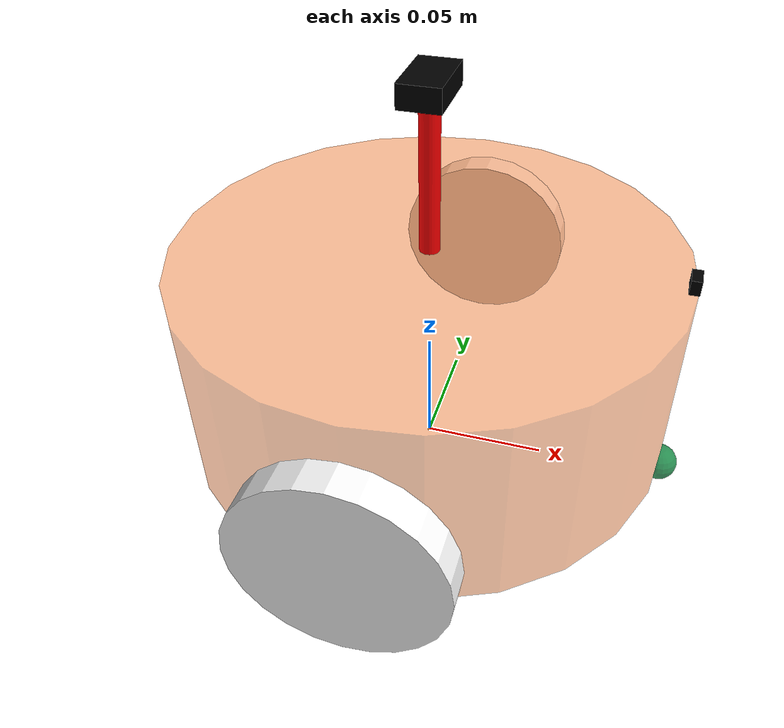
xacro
<robot name="mycar" xmlns:xacro="http://wiki.ros.org/xacro">
    <xacro:include filename="head.xacro" />
    <xacro:include filename="test2.xacro" />
    <xacro:include filename="camera.xacro" />
    <xacro:include filename="laser.xacro" />

    <xacro:include filename="gazebo/move.xacro" />
    <xacro:include filename="gazebo/lidar.xacro"/>
</robot>

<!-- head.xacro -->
<robot name="base" xmlns:xacro="http://wiki.ros.org/xacro">

    <xacro:macro name="sphere_inertial_matrix" params="m r">
        <inertial>
            <mass value="${m}" />
            <inertia ixx="${2*m*r*r/5}" ixy="0" ixz="0"
                iyy="${2*m*r*r/5}" iyz="0"
                izz="${2*m*r*r/5}" />
        </inertial>
    </xacro:macro>

    <xacro:macro name="cylinder_inertial_matrix" params="m r h">
        <inertial>
            <mass value="${m}" />
            <inertia ixx="${m*(3*r*r+h*h)/12}" ixy = "0" ixz = "0"
                iyy="${m*(3*r*r+h*h)/12}" iyz = "0"
                izz="${m*r*r/2}" />
        </inertial>
    </xacro:macro>

    <xacro:macro name="Box_inertial_matrix" params="m l w h">
       <inertial>
               <mass value="${m}" />
               <inertia ixx="${m*(h*h + l*l)/12}" ixy = "0" ixz = "0"
                   iyy="${m*(w*w + l*l)/12}" iyz= "0"
                   izz="${m*(w*w + h*h)/12}" />
       </inertial>
   </xacro:macro>
</robot>

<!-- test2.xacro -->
<robot name="mycar" xmlns:xacro="http://wiki.ros.org/xacro">
    <xacro:property name="PI" value="3.1415926"/>
    <xacro:property name="radius" value="0.1"/>
    <xacro:property name="footprint" value="0.001"/>
    <xacro:property name="wheel_radius" value="0.04"/>
    <xacro:property name="wheel_lenth" value="0.013"/>
    <xacro:property name="hight" value="0.015"/>
    <xacro:property name="base_lenth" value="0.08"/>

    <xacro:property name="wheel_joint_z" value="${-1*(base_lenth/2.0 -wheel_radius + hight)}"/>

    <link name = "base_footprint">
        <visual>
            <geometry>
                <sphere radius="${footprint}" />
            </geometry>
        </visual>
    </link>

    <link name="base_link">
        <visual>
            <geometry>
                <cylinder radius="${radius}" length="${base_lenth}" />
            </geometry>
            <origin xyz="0 0 0" rpy="0 0 0"/>
            <material name="BL_clolor">
                <color rgba="1.0 0.5 0.2 0.5" />
            </material>
        </visual>
        <collision>
         <geometry>
                <cylinder radius="${radius}" length="${base_lenth}" />
        </geometry>
        <origin xyz="0 0 0" rpy="0 0 0"/>
        </collision>
        <xacro:cylinder_inertial_matrix m="5" r="${radius}" h="${base_lenth}"/>
    </link>
    <gazebo reference="base_link">
        <material>Gazebo/Yellow</material>
    </gazebo>

    <joint name="L1" type="fixed">
        <parent link="base_footprint" />
        <child link="base_link" />
        <origin xyz="0 0 ${hight+base_lenth/2.0}" />
    </joint>

<xacro:macro name="mk_wheel" params="wheel_name flag1 flag2">
     <link name="${wheel_name}_wheel">
        <visual>
            <origin xyz="0 0 0" rpy="${PI*flag2*flag2/2.0} ${PI*flag1*flag1/2.0} 0" />
            <geometry>
                <cylinder radius="${wheel_radius}" length="${wheel_lenth}" />
            </geometry>
            <material name="wheel_color">
                <color rgba="1 1 1 1" />
            </material>
        </visual>
    <collision>
         <geometry>
                <cylinder radius="${wheel_radius}" length="${base_lenth}" />
        </geometry>
        <origin xyz="0 0 0" rpy="0 0 0"/>
    </collision>
        <xacro:cylinder_inertial_matrix m="0.6" r="${wheel_radius}" h="${wheel_lenth}"/>
    </link>
    <gazebo reference="${wheel_name}_wheel">
        <material>Gazebo/Red</material>
    </gazebo>

    <joint name="${wheel_name}2link" type="continuous">
        <parent link="base_link" />
        <child link="${wheel_name}_wheel" />
        <origin xyz="${(radius+wheel_lenth/2.0)*flag1} ${(radius+wheel_lenth/2.0)*flag2} ${wheel_joint_z}" rpy="0 0 0" />
        <axis xyz="${flag1} ${-flag2} 0" />
    </joint>
</xacro:macro>

    <xacro:mk_wheel wheel_name="l" flag1="0.0" flag2="1.0"/>
    <xacro:mk_wheel wheel_name="r" flag1="0.0" flag2="-1.0"/>

<link name="ball1">
        <visual>
            <geometry>
             <sphere radius="${hight/2}" />
            </geometry>
            <origin xyz="0 0 0" rpy="0 0 0"/>
            <material name="BL_clolor">
                <color rgba="0.0 0.5 0.2 0.8" />
            </material>
        </visual>
        <collision>
        <geometry>
             <sphere radius="${hight/2}" />
            </geometry>
        <origin xyz="0 0 0" rpy="0 0 0"/>
        </collision>
        <xacro:sphere_inertial_matrix m="1" r="${hight/2}" />
    </link>
    <gazebo reference="base_link">
        <material>Gazebo/Yellow</material>
    </gazebo>

    <joint name="L5" type="continuous">
        <parent link="base_link" />
        <child link="ball1" />
        <origin xyz="${radius} 0 ${-hight/2.0-base_lenth/2.0}" />
    </joint>

<link name="ball2">
        <visual>
            <geometry>
             <sphere radius="${hight/2}" />
            </geometry>
            <origin xyz="0 0 0" rpy="0 0 0"/>
            <material name="BL_clolor">
                <color rgba="0.0 0.5 0.2 0.8" />
            </material>
        </visual>
        <collision>
        <geometry>
             <sphere radius="${hight/2}" />
            </geometry>
        <origin xyz="0 0 0" rpy="0 0 0"/>
        </collision>
        <xacro:sphere_inertial_matrix m="1" r="${hight/2}" />
    </link>
    <gazebo reference="base_link">
        <material>Gazebo/Yellow</material>
    </gazebo>

    <joint name="L6" type="continuous">
        <parent link="base_link" />
        <child link="ball2" />
        <origin xyz="${-radius} 0 ${-hight/2.0-base_lenth/2.0}" />
    </joint>

</robot>

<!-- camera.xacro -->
<robot name="mycar" xmlns:xacro="http://wiki.ros.org/xacro">
    <xacro:property name="camera_H" value="0.006"/>
    <xacro:property name="camera_W" value="0.004"/>
    <xacro:property name="camera_L" value="0.008"/>
    <xacro:property name="joint_camera_L" value="${radius}"/>
    <xacro:property name="joint_camera_W" value="0"/>
    <xacro:property name="joint_camera_H" value="${base_lenth/2 + camera_H/2}"/>

    <link name="camera">
        <visual>
            <origin xyz="0 0 0" rpy="0 0 0" />
            <geometry>
                <box size="${camera_W} ${camera_L} ${camera_H}" />
            </geometry>
            <material name="black">
                <color rgba="0 0 0 0.9" />
            </material>
        </visual>
    <collision>
         <geometry>
                <box size="${camera_W} ${camera_L} ${camera_H}" />
        </geometry>
        <origin xyz="0 0 0" rpy="0 0 0"/>
    </collision>
        <xacro:Box_inertial_matrix m="0.01" l="${camera_W}" w="${camera_L}" h="${camera_H}"/>
    </link>
    <gazebo reference="camera">
        <material>Gazebo/Green</material>
    </gazebo>

    <joint name="camera_joint" type="fixed">
        <parent link="base_link" />
        <child link="camera" />
        <origin xyz="${joint_camera_L-camera_W/2} ${joint_camera_W} ${joint_camera_H}" rpy="0 0 0" />

     </joint>
</robot>

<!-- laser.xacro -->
<robot name="mycar" xmlns:xacro="http://wiki.ros.org/xacro">
    <xacro:property name="laser_H" value="0.06"/>
    <xacro:property name="laser_R" value="0.004"/>
    <xacro:property name="sup_W" value="0.016"/>
    <xacro:property name="sup_L" value="0.027"/>
    <xacro:property name="sup_H" value="0.009"/>
    <xacro:property name="joint_laser_x" value="0"/>
    <xacro:property name="joint_laser_y" value="0"/>
    <xacro:property name="joint_laser_z" value="${base_lenth/2 + laser_H/2}"/>
    <xacro:property name="joint_sup_x" value="0"/>
    <xacro:property name="joint_sup_y" value="0"/>
    <xacro:property name="joint_sup_z" value="${base_lenth/2 + laser_H + sup_H/2}"/>

    <link name="laser">
        <visual>
            <origin xyz="0 0 0" rpy="3.141592653 0 0" />
            <geometry>
                <cylinder radius="${laser_R}" length="${laser_H}" />
            </geometry>
            <material name="hack">
                <color rgba="1 0 0 0.9" />
            </material>
        </visual>
    <collision>
         <geometry>
                <cylinder radius="${laser_R}" length="${laser_H}" />
        </geometry>
         <origin xyz="0 0 0" rpy="3.141592653 0 0" />
    </collision>
        <xacro:cylinder_inertial_matrix m="0.01"  r="${laser_R}" h="${laser_H}"/>
    </link>
    <gazebo reference="laser">
        <material>Gazebo/Black</material>
    </gazebo>

    <joint name="laser_joint" type="fixed">
        <parent link="base_link" />
        <child link="laser" />
        <origin xyz="${joint_laser_x} ${joint_laser_y} ${joint_laser_z}" rpy="0 0 0" />

     </joint>

     <link name="sup">
        <visual>
            <origin xyz="0 0 0" rpy="0 0 0" />
            <geometry>
                <box size="${sup_W} ${sup_L} ${sup_H}" />
            </geometry>
            <material name="dark">
                <color rgba="0 0 0 0.9" />
            </material>
        </visual>
    <collision>
         <geometry>
                <box size="${sup_W} ${sup_L} ${sup_H}" />
        </geometry>
        <origin xyz="0 0 0" rpy="0 0 0"/>
    </collision>
        <xacro:Box_inertial_matrix m="0.01" l="${sup_W}" w="${sup_L}" h="${sup_H}"/>
    </link>
    <gazebo reference="sup">
        <material>Gazebo/Grey</material>
    </gazebo>

    <joint name="sup_joint" type="fixed">
        <parent link="base_link" />
        <child link="sup" />
        <origin xyz="${joint_sup_x} ${joint_sup_y} ${joint_sup_z}" rpy="0 0 0" />

     </joint>
</robot>
